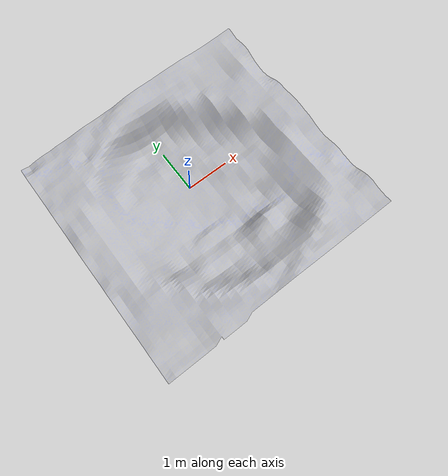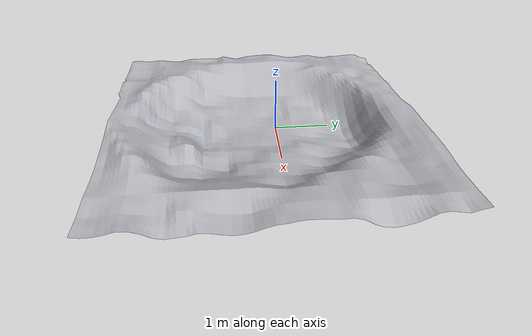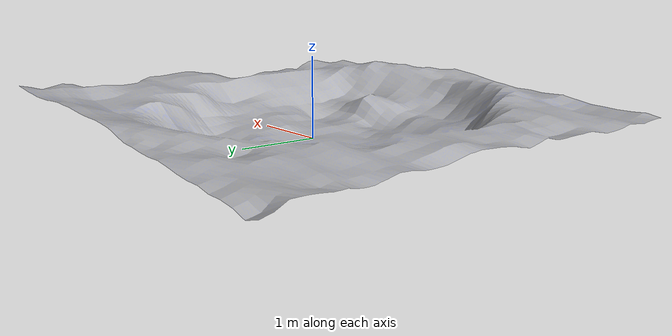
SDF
<?xml version="1.0" ?>
<sdf version='1.5'>
  <model name="crater">
      <static>true</static>
      <link name='crater_link'>
        <collision name='crater_collision'>
          <geometry>
            <box>
              <size>0.5 0.5 0.5</size>
            </box>
          </geometry>
        </collision>

        <visual name='crater_mesh'>
	  <cast_shadows>true</cast_shadows>
          <geometry>
            <mesh>
              <uri>model://crater/meshes/model.dae</uri>
            </mesh>
          </geometry>
        </visual>
      </link>
  </model>
</sdf>
